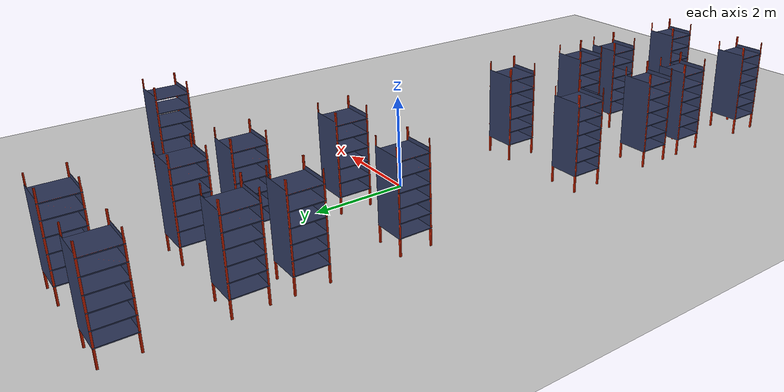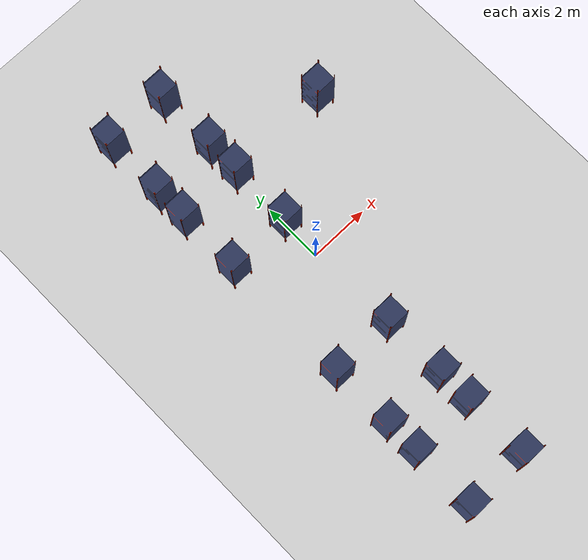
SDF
<sdf version="1.7">
 <world name="default">
  <light name="sun" type="directional">
   <pose>0 0 10 0 -0 0</pose>
   <diffuse>0.8 0.8 0.8 1</diffuse>
   <specular>0.2 0.2 0.2 1</specular>
   <attenuation>
    <range>1000</range>
    <constant>0.9</constant>
    <linear>0.01</linear>
    <quadratic>0.001</quadratic>
   </attenuation>
   <direction>-0.5 0.1 -0.9</direction>
   <spot><inner_angle>0</inner_angle><outer_angle>0</outer_angle><falloff>0</falloff></spot>
  </light>
  <model name="ground_plane">
   <static>1</static>
   <link name="link">
    <collision name="collision">
     <geometry><plane><normal>0 0 1</normal><size>100 100</size></plane></geometry>
     <surface><friction><ode><mu>100</mu><mu2>50</mu2></ode></friction></surface>
    </collision>
    <visual name="visual">
     <cast_shadows>0</cast_shadows>
     <geometry><plane><normal>0 0 1</normal><size>100 100</size></plane></geometry>
     <material>
      <script><uri>file://media/materials/scripts/gazebo.material</uri><name>Gazebo/Grey</name></script>
     </material>
    </visual>
   </link>
  </model>
  <gravity>0 0 -9.8</gravity>
  <magnetic_field>6e-06 2.3e-05 -4.2e-05</magnetic_field>
  <atmosphere type="adiabatic"/>
  <physics type="ode">
   <max_step_size>0.001</max_step_size>
   <real_time_factor>1</real_time_factor>
   <real_time_update_rate>1000</real_time_update_rate>
  </physics>
  <scene><ambient>0.4 0.4 0.4 1</ambient><background>0.7 0.7 0.7 1</background><shadows>1</shadows></scene>
  <audio><device>default</device></audio>
  <spherical_coordinates>
   <surface_model>EARTH_WGS84</surface_model>
   <latitude_deg>0</latitude_deg>
   <longitude_deg>0</longitude_deg>
   <elevation>0</elevation>
   <heading_deg>0</heading_deg>
  </spherical_coordinates>
  <model name="Robo_Shelves">
   <link name="link_1">
    <inertial>
     <mass>1</mass>
     <inertia>
      <ixx>0.166667</ixx>
      <ixy>0</ixy>
      <ixz>0</ixz>
      <iyy>0.166667</iyy>
      <iyz>0</iyz>
      <izz>0.166667</izz>
     </inertia>
    </inertial>
    <visual name="visual">
     <geometry><mesh><uri>model://Robo_Shelves/meshes/Robo shelves.dae</uri><scale>1 1 1</scale></mesh></geometry>
    </visual>
    <collision name="collision">
     <geometry><mesh><uri>model://Robo_Shelves/meshes/Robo shelves.stl</uri><scale>1 1 1</scale></mesh></geometry>
     <surface>
      <friction>
       <ode><mu>1</mu><mu2>1</mu2><fdir1>0 0 0</fdir1><slip1>0</slip1><slip2>0</slip2></ode>
       <torsional>
        <coefficient>1</coefficient>
        <patch_radius>0</patch_radius>
        <surface_radius>0</surface_radius>
        <use_patch_radius>1</use_patch_radius>
        <ode><slip>0</slip></ode>
       </torsional>
      </friction>
      <bounce><restitution_coefficient>0</restitution_coefficient><threshold>1e+06</threshold></bounce>
      <contact>
       <collide_without_contact>0</collide_without_contact>
       <collide_without_contact_bitmask>1</collide_without_contact_bitmask>
       <collide_bitmask>1</collide_bitmask>
       <ode>
        <soft_cfm>0</soft_cfm>
        <soft_erp>0.2</soft_erp>
        <kp>1e+13</kp>
        <kd>1</kd>
        <max_vel>0.01</max_vel>
        <min_depth>0</min_depth>
       </ode>
       <bullet>
        <split_impulse>1</split_impulse>
        <split_impulse_penetration_threshold>-0.01</split_impulse_penetration_threshold>
        <soft_cfm>0</soft_cfm>
        <soft_erp>0.2</soft_erp>
        <kp>1e+13</kp>
        <kd>1</kd>
       </bullet>
      </contact>
     </surface>
    </collision>
   </link>
   <static>0</static>
   <pose>0 -8.375 0 0 -0 1.5708</pose>
  </model>
  <model name="Robo_Shelves_0">
   <link name="link_1">
    <inertial>
     <mass>1</mass>
     <inertia>
      <ixx>0.166667</ixx>
      <ixy>0</ixy>
      <ixz>0</ixz>
      <iyy>0.166667</iyy>
      <iyz>0</iyz>
      <izz>0.166667</izz>
     </inertia>
    </inertial>
    <visual name="visual">
     <geometry><mesh><uri>model://Robo_Shelves/meshes/Robo shelves.dae</uri><scale>1 1 1</scale></mesh></geometry>
    </visual>
    <collision name="collision">
     <geometry><mesh><uri>model://Robo_Shelves/meshes/Robo shelves.stl</uri><scale>1 1 1</scale></mesh></geometry>
     <surface>
      <friction>
       <ode><mu>1</mu><mu2>1</mu2><fdir1>0 0 0</fdir1><slip1>0</slip1><slip2>0</slip2></ode>
       <torsional>
        <coefficient>1</coefficient>
        <patch_radius>0</patch_radius>
        <surface_radius>0</surface_radius>
        <use_patch_radius>1</use_patch_radius>
        <ode><slip>0</slip></ode>
       </torsional>
      </friction>
      <bounce><restitution_coefficient>0</restitution_coefficient><threshold>1e+06</threshold></bounce>
      <contact>
       <collide_without_contact>0</collide_without_contact>
       <collide_without_contact_bitmask>1</collide_without_contact_bitmask>
       <collide_bitmask>1</collide_bitmask>
       <ode>
        <soft_cfm>0</soft_cfm>
        <soft_erp>0.2</soft_erp>
        <kp>1e+13</kp>
        <kd>1</kd>
        <max_vel>0.01</max_vel>
        <min_depth>0</min_depth>
       </ode>
       <bullet>
        <split_impulse>1</split_impulse>
        <split_impulse_penetration_threshold>-0.01</split_impulse_penetration_threshold>
        <soft_cfm>0</soft_cfm>
        <soft_erp>0.2</soft_erp>
        <kp>1e+13</kp>
        <kd>1</kd>
       </bullet>
      </contact>
     </surface>
    </collision>
   </link>
   <static>0</static>
   <pose>0 -6.275 0 0 -0 1.5708</pose>
  </model>
  <model name="Robo_Shelves_1">
   <link name="link_1">
    <inertial>
     <mass>1</mass>
     <inertia>
      <ixx>0.166667</ixx>
      <ixy>0</ixy>
      <ixz>0</ixz>
      <iyy>0.166667</iyy>
      <iyz>0</iyz>
      <izz>0.166667</izz>
     </inertia>
    </inertial>
    <visual name="visual">
     <geometry><mesh><uri>model://Robo_Shelves/meshes/Robo shelves.dae</uri><scale>1 1 1</scale></mesh></geometry>
    </visual>
    <collision name="collision">
     <geometry><mesh><uri>model://Robo_Shelves/meshes/Robo shelves.stl</uri><scale>1 1 1</scale></mesh></geometry>
     <surface>
      <friction>
       <ode><mu>1</mu><mu2>1</mu2><fdir1>0 0 0</fdir1><slip1>0</slip1><slip2>0</slip2></ode>
       <torsional>
        <coefficient>1</coefficient>
        <patch_radius>0</patch_radius>
        <surface_radius>0</surface_radius>
        <use_patch_radius>1</use_patch_radius>
        <ode><slip>0</slip></ode>
       </torsional>
      </friction>
      <bounce><restitution_coefficient>0</restitution_coefficient><threshold>1e+06</threshold></bounce>
      <contact>
       <collide_without_contact>0</collide_without_contact>
       <collide_without_contact_bitmask>1</collide_without_contact_bitmask>
       <collide_bitmask>1</collide_bitmask>
       <ode>
        <soft_cfm>0</soft_cfm>
        <soft_erp>0.2</soft_erp>
        <kp>1e+13</kp>
        <kd>1</kd>
        <max_vel>0.01</max_vel>
        <min_depth>0</min_depth>
       </ode>
       <bullet>
        <split_impulse>1</split_impulse>
        <split_impulse_penetration_threshold>-0.01</split_impulse_penetration_threshold>
        <soft_cfm>0</soft_cfm>
        <soft_erp>0.2</soft_erp>
        <kp>1e+13</kp>
        <kd>1</kd>
       </bullet>
      </contact>
     </surface>
    </collision>
   </link>
   <static>0</static>
   <pose>-2.1 -8.375 0 0 -0 1.5708</pose>
  </model>
  <model name="Robo_Shelves_2">
   <link name="link_1">
    <inertial>
     <mass>1</mass>
     <inertia>
      <ixx>0.166667</ixx>
      <ixy>0</ixy>
      <ixz>0</ixz>
      <iyy>0.166667</iyy>
      <iyz>0</iyz>
      <izz>0.166667</izz>
     </inertia>
    </inertial>
    <visual name="visual">
     <geometry><mesh><uri>model://Robo_Shelves/meshes/Robo shelves.dae</uri><scale>1 1 1</scale></mesh></geometry>
    </visual>
    <collision name="collision">
     <geometry><mesh><uri>model://Robo_Shelves/meshes/Robo shelves.stl</uri><scale>1 1 1</scale></mesh></geometry>
     <surface>
      <friction>
       <ode><mu>1</mu><mu2>1</mu2><fdir1>0 0 0</fdir1><slip1>0</slip1><slip2>0</slip2></ode>
       <torsional>
        <coefficient>1</coefficient>
        <patch_radius>0</patch_radius>
        <surface_radius>0</surface_radius>
        <use_patch_radius>1</use_patch_radius>
        <ode><slip>0</slip></ode>
       </torsional>
      </friction>
      <bounce><restitution_coefficient>0</restitution_coefficient><threshold>1e+06</threshold></bounce>
      <contact>
       <collide_without_contact>0</collide_without_contact>
       <collide_without_contact_bitmask>1</collide_without_contact_bitmask>
       <collide_bitmask>1</collide_bitmask>
       <ode>
        <soft_cfm>0</soft_cfm>
        <soft_erp>0.2</soft_erp>
        <kp>1e+13</kp>
        <kd>1</kd>
        <max_vel>0.01</max_vel>
        <min_depth>0</min_depth>
       </ode>
       <bullet>
        <split_impulse>1</split_impulse>
        <split_impulse_penetration_threshold>-0.01</split_impulse_penetration_threshold>
        <soft_cfm>0</soft_cfm>
        <soft_erp>0.2</soft_erp>
        <kp>1e+13</kp>
        <kd>1</kd>
       </bullet>
      </contact>
     </surface>
    </collision>
   </link>
   <static>0</static>
   <pose>-2.1 -6.275 0 0 -0 1.5708</pose>
  </model>
  <model name="Robo_Shelves_3">
   <link name="link_1">
    <inertial>
     <mass>1</mass>
     <inertia>
      <ixx>0.166667</ixx>
      <ixy>0</ixy>
      <ixz>0</ixz>
      <iyy>0.166667</iyy>
      <iyz>0</iyz>
      <izz>0.166667</izz>
     </inertia>
    </inertial>
    <visual name="visual">
     <geometry><mesh><uri>model://Robo_Shelves/meshes/Robo shelves.dae</uri><scale>1 1 1</scale></mesh></geometry>
    </visual>
    <collision name="collision">
     <geometry><mesh><uri>model://Robo_Shelves/meshes/Robo shelves.stl</uri><scale>1 1 1</scale></mesh></geometry>
     <surface>
      <friction>
       <ode><mu>1</mu><mu2>1</mu2><fdir1>0 0 0</fdir1><slip1>0</slip1><slip2>0</slip2></ode>
       <torsional>
        <coefficient>1</coefficient>
        <patch_radius>0</patch_radius>
        <surface_radius>0</surface_radius>
        <use_patch_radius>1</use_patch_radius>
        <ode><slip>0</slip></ode>
       </torsional>
      </friction>
      <bounce><restitution_coefficient>0</restitution_coefficient><threshold>1e+06</threshold></bounce>
      <contact>
       <collide_without_contact>0</collide_without_contact>
       <collide_without_contact_bitmask>1</collide_without_contact_bitmask>
       <collide_bitmask>1</collide_bitmask>
       <ode>
        <soft_cfm>0</soft_cfm>
        <soft_erp>0.2</soft_erp>
        <kp>1e+13</kp>
        <kd>1</kd>
        <max_vel>0.01</max_vel>
        <min_depth>0</min_depth>
       </ode>
       <bullet>
        <split_impulse>1</split_impulse>
        <split_impulse_penetration_threshold>-0.01</split_impulse_penetration_threshold>
        <soft_cfm>0</soft_cfm>
        <soft_erp>0.2</soft_erp>
        <kp>1e+13</kp>
        <kd>1</kd>
       </bullet>
      </contact>
     </surface>
    </collision>
   </link>
   <static>0</static>
   <pose>0 -5.15 0 0 -0 1.5708</pose>
  </model>
  <model name="Robo_Shelves_4">
   <link name="link_1">
    <inertial>
     <mass>1</mass>
     <inertia>
      <ixx>0.166667</ixx>
      <ixy>0</ixy>
      <ixz>0</ixz>
      <iyy>0.166667</iyy>
      <iyz>0</iyz>
      <izz>0.166667</izz>
     </inertia>
    </inertial>
    <visual name="visual">
     <geometry><mesh><uri>model://Robo_Shelves/meshes/Robo shelves.dae</uri><scale>1 1 1</scale></mesh></geometry>
    </visual>
    <collision name="collision">
     <geometry><mesh><uri>model://Robo_Shelves/meshes/Robo shelves.stl</uri><scale>1 1 1</scale></mesh></geometry>
     <surface>
      <friction>
       <ode><mu>1</mu><mu2>1</mu2><fdir1>0 0 0</fdir1><slip1>0</slip1><slip2>0</slip2></ode>
       <torsional>
        <coefficient>1</coefficient>
        <patch_radius>0</patch_radius>
        <surface_radius>0</surface_radius>
        <use_patch_radius>1</use_patch_radius>
        <ode><slip>0</slip></ode>
       </torsional>
      </friction>
      <bounce><restitution_coefficient>0</restitution_coefficient><threshold>1e+06</threshold></bounce>
      <contact>
       <collide_without_contact>0</collide_without_contact>
       <collide_without_contact_bitmask>1</collide_without_contact_bitmask>
       <collide_bitmask>1</collide_bitmask>
       <ode>
        <soft_cfm>0</soft_cfm>
        <soft_erp>0.2</soft_erp>
        <kp>1e+13</kp>
        <kd>1</kd>
        <max_vel>0.01</max_vel>
        <min_depth>0</min_depth>
       </ode>
       <bullet>
        <split_impulse>1</split_impulse>
        <split_impulse_penetration_threshold>-0.01</split_impulse_penetration_threshold>
        <soft_cfm>0</soft_cfm>
        <soft_erp>0.2</soft_erp>
        <kp>1e+13</kp>
        <kd>1</kd>
       </bullet>
      </contact>
     </surface>
    </collision>
   </link>
   <static>0</static>
   <pose>0 -3.05 0 0 -0 1.5708</pose>
  </model>
  <model name="Robo_Shelves_5">
   <link name="link_1">
    <inertial>
     <mass>1</mass>
     <inertia>
      <ixx>0.166667</ixx>
      <ixy>0</ixy>
      <ixz>0</ixz>
      <iyy>0.166667</iyy>
      <iyz>0</iyz>
      <izz>0.166667</izz>
     </inertia>
    </inertial>
    <visual name="visual">
     <geometry><mesh><uri>model://Robo_Shelves/meshes/Robo shelves.dae</uri><scale>1 1 1</scale></mesh></geometry>
    </visual>
    <collision name="collision">
     <geometry><mesh><uri>model://Robo_Shelves/meshes/Robo shelves.stl</uri><scale>1 1 1</scale></mesh></geometry>
     <surface>
      <friction>
       <ode><mu>1</mu><mu2>1</mu2><fdir1>0 0 0</fdir1><slip1>0</slip1><slip2>0</slip2></ode>
       <torsional>
        <coefficient>1</coefficient>
        <patch_radius>0</patch_radius>
        <surface_radius>0</surface_radius>
        <use_patch_radius>1</use_patch_radius>
        <ode><slip>0</slip></ode>
       </torsional>
      </friction>
      <bounce><restitution_coefficient>0</restitution_coefficient><threshold>1e+06</threshold></bounce>
      <contact>
       <collide_without_contact>0</collide_without_contact>
       <collide_without_contact_bitmask>1</collide_without_contact_bitmask>
       <collide_bitmask>1</collide_bitmask>
       <ode>
        <soft_cfm>0</soft_cfm>
        <soft_erp>0.2</soft_erp>
        <kp>1e+13</kp>
        <kd>1</kd>
        <max_vel>0.01</max_vel>
        <min_depth>0</min_depth>
       </ode>
       <bullet>
        <split_impulse>1</split_impulse>
        <split_impulse_penetration_threshold>-0.01</split_impulse_penetration_threshold>
        <soft_cfm>0</soft_cfm>
        <soft_erp>0.2</soft_erp>
        <kp>1e+13</kp>
        <kd>1</kd>
       </bullet>
      </contact>
     </surface>
    </collision>
   </link>
   <static>0</static>
   <pose>-2.1 -5.15 0 0 -0 1.5708</pose>
  </model>
  <model name="Robo_Shelves_6">
   <link name="link_1">
    <inertial>
     <mass>1</mass>
     <inertia>
      <ixx>0.166667</ixx>
      <ixy>0</ixy>
      <ixz>0</ixz>
      <iyy>0.166667</iyy>
      <iyz>0</iyz>
      <izz>0.166667</izz>
     </inertia>
    </inertial>
    <visual name="visual">
     <geometry><mesh><uri>model://Robo_Shelves/meshes/Robo shelves.dae</uri><scale>1 1 1</scale></mesh></geometry>
    </visual>
    <collision name="collision">
     <geometry><mesh><uri>model://Robo_Shelves/meshes/Robo shelves.stl</uri><scale>1 1 1</scale></mesh></geometry>
     <surface>
      <friction>
       <ode><mu>1</mu><mu2>1</mu2><fdir1>0 0 0</fdir1><slip1>0</slip1><slip2>0</slip2></ode>
       <torsional>
        <coefficient>1</coefficient>
        <patch_radius>0</patch_radius>
        <surface_radius>0</surface_radius>
        <use_patch_radius>1</use_patch_radius>
        <ode><slip>0</slip></ode>
       </torsional>
      </friction>
      <bounce><restitution_coefficient>0</restitution_coefficient><threshold>1e+06</threshold></bounce>
      <contact>
       <collide_without_contact>0</collide_without_contact>
       <collide_without_contact_bitmask>1</collide_without_contact_bitmask>
       <collide_bitmask>1</collide_bitmask>
       <ode>
        <soft_cfm>0</soft_cfm>
        <soft_erp>0.2</soft_erp>
        <kp>1e+13</kp>
        <kd>1</kd>
        <max_vel>0.01</max_vel>
        <min_depth>0</min_depth>
       </ode>
       <bullet>
        <split_impulse>1</split_impulse>
        <split_impulse_penetration_threshold>-0.01</split_impulse_penetration_threshold>
        <soft_cfm>0</soft_cfm>
        <soft_erp>0.2</soft_erp>
        <kp>1e+13</kp>
        <kd>1</kd>
       </bullet>
      </contact>
     </surface>
    </collision>
   </link>
   <static>0</static>
   <pose>-2.1 -3.05 0 0 -0 1.5708</pose>
  </model>
  <model name="Robo_Shelves_9">
   <link name="link_1">
    <inertial>
     <mass>1</mass>
     <inertia>
      <ixx>0.166667</ixx>
      <ixy>0</ixy>
      <ixz>0</ixz>
      <iyy>0.166667</iyy>
      <iyz>0</iyz>
      <izz>0.166667</izz>
     </inertia>
    </inertial>
    <visual name="visual">
     <geometry><mesh><uri>model://Robo_Shelves/meshes/Robo shelves.dae</uri><scale>1 1 1</scale></mesh></geometry>
    </visual>
    <collision name="collision">
     <geometry><mesh><uri>model://Robo_Shelves/meshes/Robo shelves.stl</uri><scale>1 1 1</scale></mesh></geometry>
     <surface>
      <friction>
       <ode><mu>1</mu><mu2>1</mu2><fdir1>0 0 0</fdir1><slip1>0</slip1><slip2>0</slip2></ode>
       <torsional>
        <coefficient>1</coefficient>
        <patch_radius>0</patch_radius>
        <surface_radius>0</surface_radius>
        <use_patch_radius>1</use_patch_radius>
        <ode><slip>0</slip></ode>
       </torsional>
      </friction>
      <bounce><restitution_coefficient>0</restitution_coefficient><threshold>1e+06</threshold></bounce>
      <contact>
       <collide_without_contact>0</collide_without_contact>
       <collide_without_contact_bitmask>1</collide_without_contact_bitmask>
       <collide_bitmask>1</collide_bitmask>
       <ode>
        <soft_cfm>0</soft_cfm>
        <soft_erp>0.2</soft_erp>
        <kp>1e+13</kp>
        <kd>1</kd>
        <max_vel>0.01</max_vel>
        <min_depth>0</min_depth>
       </ode>
       <bullet>
        <split_impulse>1</split_impulse>
        <split_impulse_penetration_threshold>-0.01</split_impulse_penetration_threshold>
        <soft_cfm>0</soft_cfm>
        <soft_erp>0.2</soft_erp>
        <kp>1e+13</kp>
        <kd>1</kd>
       </bullet>
      </contact>
     </surface>
    </collision>
   </link>
   <static>0</static>
   <pose>-2.1 1.29 0 0 -0 1.5708</pose>
  </model>
  <model name="Robo_Shelves_10">
   <link name="link_1">
    <inertial>
     <mass>1</mass>
     <inertia>
      <ixx>0.166667</ixx>
      <ixy>0</ixy>
      <ixz>0</ixz>
      <iyy>0.166667</iyy>
      <iyz>0</iyz>
      <izz>0.166667</izz>
     </inertia>
    </inertial>
    <visual name="visual">
     <geometry><mesh><uri>model://Robo_Shelves/meshes/Robo shelves.dae</uri><scale>1 1 1</scale></mesh></geometry>
    </visual>
    <collision name="collision">
     <geometry><mesh><uri>model://Robo_Shelves/meshes/Robo shelves.stl</uri><scale>1 1 1</scale></mesh></geometry>
     <surface>
      <friction>
       <ode><mu>1</mu><mu2>1</mu2><fdir1>0 0 0</fdir1><slip1>0</slip1><slip2>0</slip2></ode>
       <torsional>
        <coefficient>1</coefficient>
        <patch_radius>0</patch_radius>
        <surface_radius>0</surface_radius>
        <use_patch_radius>1</use_patch_radius>
        <ode><slip>0</slip></ode>
       </torsional>
      </friction>
      <bounce><restitution_coefficient>0</restitution_coefficient><threshold>1e+06</threshold></bounce>
      <contact>
       <collide_without_contact>0</collide_without_contact>
       <collide_without_contact_bitmask>1</collide_without_contact_bitmask>
       <collide_bitmask>1</collide_bitmask>
       <ode>
        <soft_cfm>0</soft_cfm>
        <soft_erp>0.2</soft_erp>
        <kp>1e+13</kp>
        <kd>1</kd>
        <max_vel>0.01</max_vel>
        <min_depth>0</min_depth>
       </ode>
       <bullet>
        <split_impulse>1</split_impulse>
        <split_impulse_penetration_threshold>-0.01</split_impulse_penetration_threshold>
        <soft_cfm>0</soft_cfm>
        <soft_erp>0.2</soft_erp>
        <kp>1e+13</kp>
        <kd>1</kd>
       </bullet>
      </contact>
     </surface>
    </collision>
   </link>
   <static>0</static>
   <pose>-2.1 3.4 0 0 -0 1.5708</pose>
  </model>
  <model name="Robo_Shelves_11">
   <link name="link_1">
    <inertial>
     <mass>1</mass>
     <inertia>
      <ixx>0.166667</ixx>
      <ixy>0</ixy>
      <ixz>0</ixz>
      <iyy>0.166667</iyy>
      <iyz>0</iyz>
      <izz>0.166667</izz>
     </inertia>
    </inertial>
    <visual name="visual">
     <geometry><mesh><uri>model://Robo_Shelves/meshes/Robo shelves.dae</uri><scale>1 1 1</scale></mesh></geometry>
    </visual>
    <collision name="collision">
     <geometry><mesh><uri>model://Robo_Shelves/meshes/Robo shelves.stl</uri><scale>1 1 1</scale></mesh></geometry>
     <surface>
      <friction>
       <ode><mu>1</mu><mu2>1</mu2><fdir1>0 0 0</fdir1><slip1>0</slip1><slip2>0</slip2></ode>
       <torsional>
        <coefficient>1</coefficient>
        <patch_radius>0</patch_radius>
        <surface_radius>0</surface_radius>
        <use_patch_radius>1</use_patch_radius>
        <ode><slip>0</slip></ode>
       </torsional>
      </friction>
      <bounce><restitution_coefficient>0</restitution_coefficient><threshold>1e+06</threshold></bounce>
      <contact>
       <collide_without_contact>0</collide_without_contact>
       <collide_without_contact_bitmask>1</collide_without_contact_bitmask>
       <collide_bitmask>1</collide_bitmask>
       <ode>
        <soft_cfm>0</soft_cfm>
        <soft_erp>0.2</soft_erp>
        <kp>1e+13</kp>
        <kd>1</kd>
        <max_vel>0.01</max_vel>
        <min_depth>0</min_depth>
       </ode>
       <bullet>
        <split_impulse>1</split_impulse>
        <split_impulse_penetration_threshold>-0.01</split_impulse_penetration_threshold>
        <soft_cfm>0</soft_cfm>
        <soft_erp>0.2</soft_erp>
        <kp>1e+13</kp>
        <kd>1</kd>
       </bullet>
      </contact>
     </surface>
    </collision>
   </link>
   <static>0</static>
   <pose>0 1.29 0 0 -0 1.5708</pose>
  </model>
  <model name="Robo_Shelves_12">
   <link name="link_1">
    <inertial>
     <mass>1</mass>
     <inertia>
      <ixx>0.166667</ixx>
      <ixy>0</ixy>
      <ixz>0</ixz>
      <iyy>0.166667</iyy>
      <iyz>0</iyz>
      <izz>0.166667</izz>
     </inertia>
    </inertial>
    <visual name="visual">
     <geometry><mesh><uri>model://Robo_Shelves/meshes/Robo shelves.dae</uri><scale>1 1 1</scale></mesh></geometry>
    </visual>
    <collision name="collision">
     <geometry><mesh><uri>model://Robo_Shelves/meshes/Robo shelves.stl</uri><scale>1 1 1</scale></mesh></geometry>
     <surface>
      <friction>
       <ode><mu>1</mu><mu2>1</mu2><fdir1>0 0 0</fdir1><slip1>0</slip1><slip2>0</slip2></ode>
       <torsional>
        <coefficient>1</coefficient>
        <patch_radius>0</patch_radius>
        <surface_radius>0</surface_radius>
        <use_patch_radius>1</use_patch_radius>
        <ode><slip>0</slip></ode>
       </torsional>
      </friction>
      <bounce><restitution_coefficient>0</restitution_coefficient><threshold>1e+06</threshold></bounce>
      <contact>
       <collide_without_contact>0</collide_without_contact>
       <collide_without_contact_bitmask>1</collide_without_contact_bitmask>
       <collide_bitmask>1</collide_bitmask>
       <ode>
        <soft_cfm>0</soft_cfm>
        <soft_erp>0.2</soft_erp>
        <kp>1e+13</kp>
        <kd>1</kd>
        <max_vel>0.01</max_vel>
        <min_depth>0</min_depth>
       </ode>
       <bullet>
        <split_impulse>1</split_impulse>
        <split_impulse_penetration_threshold>-0.01</split_impulse_penetration_threshold>
        <soft_cfm>0</soft_cfm>
        <soft_erp>0.2</soft_erp>
        <kp>1e+13</kp>
        <kd>1</kd>
       </bullet>
      </contact>
     </surface>
    </collision>
   </link>
   <static>0</static>
   <pose>0 3.4 0 0 -0 1.5708</pose>
  </model>
  <model name="Robo_Shelves_13">
   <link name="link_1">
    <inertial>
     <mass>1</mass>
     <inertia>
      <ixx>0.166667</ixx>
      <ixy>0</ixy>
      <ixz>0</ixz>
      <iyy>0.166667</iyy>
      <iyz>0</iyz>
      <izz>0.166667</izz>
     </inertia>
    </inertial>
    <visual name="visual">
     <geometry><mesh><uri>model://Robo_Shelves/meshes/Robo shelves.dae</uri><scale>1 1 1</scale></mesh></geometry>
    </visual>
    <collision name="collision">
     <geometry><mesh><uri>model://Robo_Shelves/meshes/Robo shelves.stl</uri><scale>1 1 1</scale></mesh></geometry>
     <surface>
      <friction>
       <ode><mu>1</mu><mu2>1</mu2><fdir1>0 0 0</fdir1><slip1>0</slip1><slip2>0</slip2></ode>
       <torsional>
        <coefficient>1</coefficient>
        <patch_radius>0</patch_radius>
        <surface_radius>0</surface_radius>
        <use_patch_radius>1</use_patch_radius>
        <ode><slip>0</slip></ode>
       </torsional>
      </friction>
      <bounce><restitution_coefficient>0</restitution_coefficient><threshold>1e+06</threshold></bounce>
      <contact>
       <collide_without_contact>0</collide_without_contact>
       <collide_without_contact_bitmask>1</collide_without_contact_bitmask>
       <collide_bitmask>1</collide_bitmask>
       <ode>
        <soft_cfm>0</soft_cfm>
        <soft_erp>0.2</soft_erp>
        <kp>1e+13</kp>
        <kd>1</kd>
        <max_vel>0.01</max_vel>
        <min_depth>0</min_depth>
       </ode>
       <bullet>
        <split_impulse>1</split_impulse>
        <split_impulse_penetration_threshold>-0.01</split_impulse_penetration_threshold>
        <soft_cfm>0</soft_cfm>
        <soft_erp>0.2</soft_erp>
        <kp>1e+13</kp>
        <kd>1</kd>
       </bullet>
      </contact>
     </surface>
    </collision>
   </link>
   <static>0</static>
   <pose>-2.1 4.525 0 0 -0 1.5708</pose>
  </model>
  <model name="Robo_Shelves_14">
   <link name="link_1">
    <inertial>
     <mass>1</mass>
     <inertia>
      <ixx>0.166667</ixx>
      <ixy>0</ixy>
      <ixz>0</ixz>
      <iyy>0.166667</iyy>
      <iyz>0</iyz>
      <izz>0.166667</izz>
     </inertia>
    </inertial>
    <visual name="visual">
     <geometry><mesh><uri>model://Robo_Shelves/meshes/Robo shelves.dae</uri><scale>1 1 1</scale></mesh></geometry>
    </visual>
    <collision name="collision">
     <geometry><mesh><uri>model://Robo_Shelves/meshes/Robo shelves.stl</uri><scale>1 1 1</scale></mesh></geometry>
     <surface>
      <friction>
       <ode><mu>1</mu><mu2>1</mu2><fdir1>0 0 0</fdir1><slip1>0</slip1><slip2>0</slip2></ode>
       <torsional>
        <coefficient>1</coefficient>
        <patch_radius>0</patch_radius>
        <surface_radius>0</surface_radius>
        <use_patch_radius>1</use_patch_radius>
        <ode><slip>0</slip></ode>
       </torsional>
      </friction>
      <bounce><restitution_coefficient>0</restitution_coefficient><threshold>1e+06</threshold></bounce>
      <contact>
       <collide_without_contact>0</collide_without_contact>
       <collide_without_contact_bitmask>1</collide_without_contact_bitmask>
       <collide_bitmask>1</collide_bitmask>
       <ode>
        <soft_cfm>0</soft_cfm>
        <soft_erp>0.2</soft_erp>
        <kp>1e+13</kp>
        <kd>1</kd>
        <max_vel>0.01</max_vel>
        <min_depth>0</min_depth>
       </ode>
       <bullet>
        <split_impulse>1</split_impulse>
        <split_impulse_penetration_threshold>-0.01</split_impulse_penetration_threshold>
        <soft_cfm>0</soft_cfm>
        <soft_erp>0.2</soft_erp>
        <kp>1e+13</kp>
        <kd>1</kd>
       </bullet>
      </contact>
     </surface>
    </collision>
   </link>
   <static>0</static>
   <pose>-2.1 6.625 0 0 -0 1.5708</pose>
  </model>
  <model name="Robo_Shelves_15">
   <link name="link_1">
    <inertial>
     <mass>1</mass>
     <inertia>
      <ixx>0.166667</ixx>
      <ixy>0</ixy>
      <ixz>0</ixz>
      <iyy>0.166667</iyy>
      <iyz>0</iyz>
      <izz>0.166667</izz>
     </inertia>
    </inertial>
    <visual name="visual">
     <geometry><mesh><uri>model://Robo_Shelves/meshes/Robo shelves.dae</uri><scale>1 1 1</scale></mesh></geometry>
    </visual>
    <collision name="collision">
     <geometry><mesh><uri>model://Robo_Shelves/meshes/Robo shelves.stl</uri><scale>1 1 1</scale></mesh></geometry>
     <surface>
      <friction>
       <ode><mu>1</mu><mu2>1</mu2><fdir1>0 0 0</fdir1><slip1>0</slip1><slip2>0</slip2></ode>
       <torsional>
        <coefficient>1</coefficient>
        <patch_radius>0</patch_radius>
        <surface_radius>0</surface_radius>
        <use_patch_radius>1</use_patch_radius>
        <ode><slip>0</slip></ode>
       </torsional>
      </friction>
      <bounce><restitution_coefficient>0</restitution_coefficient><threshold>1e+06</threshold></bounce>
      <contact>
       <collide_without_contact>0</collide_without_contact>
       <collide_without_contact_bitmask>1</collide_without_contact_bitmask>
       <collide_bitmask>1</collide_bitmask>
       <ode>
        <soft_cfm>0</soft_cfm>
        <soft_erp>0.2</soft_erp>
        <kp>1e+13</kp>
        <kd>1</kd>
        <max_vel>0.01</max_vel>
        <min_depth>0</min_depth>
       </ode>
       <bullet>
        <split_impulse>1</split_impulse>
        <split_impulse_penetration_threshold>-0.01</split_impulse_penetration_threshold>
        <soft_cfm>0</soft_cfm>
        <soft_erp>0.2</soft_erp>
        <kp>1e+13</kp>
        <kd>1</kd>
       </bullet>
      </contact>
     </surface>
    </collision>
   </link>
   <static>0</static>
   <pose>0 6.625 0 0 -0 1.5708</pose>
  </model>
  <model name="Robo_Shelves_16">
   <link name="link_1">
    <inertial>
     <mass>1</mass>
     <inertia>
      <ixx>0.166667</ixx>
      <ixy>0</ixy>
      <ixz>0</ixz>
      <iyy>0.166667</iyy>
      <iyz>0</iyz>
      <izz>0.166667</izz>
     </inertia>
    </inertial>
    <visual name="visual">
     <geometry><mesh><uri>model://Robo_Shelves/meshes/Robo shelves.dae</uri><scale>1 1 1</scale></mesh></geometry>
    </visual>
    <collision name="collision">
     <geometry><mesh><uri>model://Robo_Shelves/meshes/Robo shelves.stl</uri><scale>1 1 1</scale></mesh></geometry>
     <surface>
      <friction>
       <ode><mu>1</mu><mu2>1</mu2><fdir1>0 0 0</fdir1><slip1>0</slip1><slip2>0</slip2></ode>
       <torsional>
        <coefficient>1</coefficient>
        <patch_radius>0</patch_radius>
        <surface_radius>0</surface_radius>
        <use_patch_radius>1</use_patch_radius>
        <ode><slip>0</slip></ode>
       </torsional>
      </friction>
      <bounce><restitution_coefficient>0</restitution_coefficient><threshold>1e+06</threshold></bounce>
      <contact>
       <collide_without_contact>0</collide_without_contact>
       <collide_without_contact_bitmask>1</collide_without_contact_bitmask>
       <collide_bitmask>1</collide_bitmask>
       <ode>
        <soft_cfm>0</soft_cfm>
        <soft_erp>0.2</soft_erp>
        <kp>1e+13</kp>
        <kd>1</kd>
        <max_vel>0.01</max_vel>
        <min_depth>0</min_depth>
       </ode>
       <bullet>
        <split_impulse>1</split_impulse>
        <split_impulse_penetration_threshold>-0.01</split_impulse_penetration_threshold>
        <soft_cfm>0</soft_cfm>
        <soft_erp>0.2</soft_erp>
        <kp>1e+13</kp>
        <kd>1</kd>
       </bullet>
      </contact>
     </surface>
    </collision>
   </link>
   <static>0</static>
   <pose>0 4.525 0 0 -0 1.5708</pose>
  </model>
  <model name="Robo_Shelves_7">
   <link name="link_1">
    <inertial>
     <mass>1</mass>
     <inertia>
      <ixx>0.166667</ixx>
      <ixy>0</ixy>
      <ixz>0</ixz>
      <iyy>0.166667</iyy>
      <iyz>0</iyz>
      <izz>0.166667</izz>
     </inertia>
    </inertial>
    <visual name="visual">
     <geometry><mesh><uri>model://Robo_Shelves/meshes/Robo shelves.dae</uri><scale>1 1 1</scale></mesh></geometry>
    </visual>
    <collision name="collision">
     <geometry><mesh><uri>model://Robo_Shelves/meshes/Robo shelves.stl</uri><scale>1 1 1</scale></mesh></geometry>
     <surface>
      <friction>
       <ode><mu>1</mu><mu2>1</mu2><fdir1>0 0 0</fdir1><slip1>0</slip1><slip2>0</slip2></ode>
       <torsional>
        <coefficient>1</coefficient>
        <patch_radius>0</patch_radius>
        <surface_radius>0</surface_radius>
        <use_patch_radius>1</use_patch_radius>
        <ode><slip>0</slip></ode>
       </torsional>
      </friction>
      <bounce><restitution_coefficient>0</restitution_coefficient><threshold>1e+06</threshold></bounce>
      <contact>
       <collide_without_contact>0</collide_without_contact>
       <collide_without_contact_bitmask>1</collide_without_contact_bitmask>
       <collide_bitmask>1</collide_bitmask>
       <ode>
        <soft_cfm>0</soft_cfm>
        <soft_erp>0.2</soft_erp>
        <kp>1e+13</kp>
        <kd>1</kd>
        <max_vel>0.01</max_vel>
        <min_depth>0</min_depth>
       </ode>
       <bullet>
        <split_impulse>1</split_impulse>
        <split_impulse_penetration_threshold>-0.01</split_impulse_penetration_threshold>
        <soft_cfm>0</soft_cfm>
        <soft_erp>0.2</soft_erp>
        <kp>1e+13</kp>
        <kd>1</kd>
       </bullet>
      </contact>
     </surface>
    </collision>
   </link>
   <static>0</static>
   <pose>3.5 3.5 0 0 -0 1.5708</pose>
  </model>
  <plugin name="gazebo_ros_state" filename="libgazebo_ros_state.so"/>
 </world>
</sdf>
